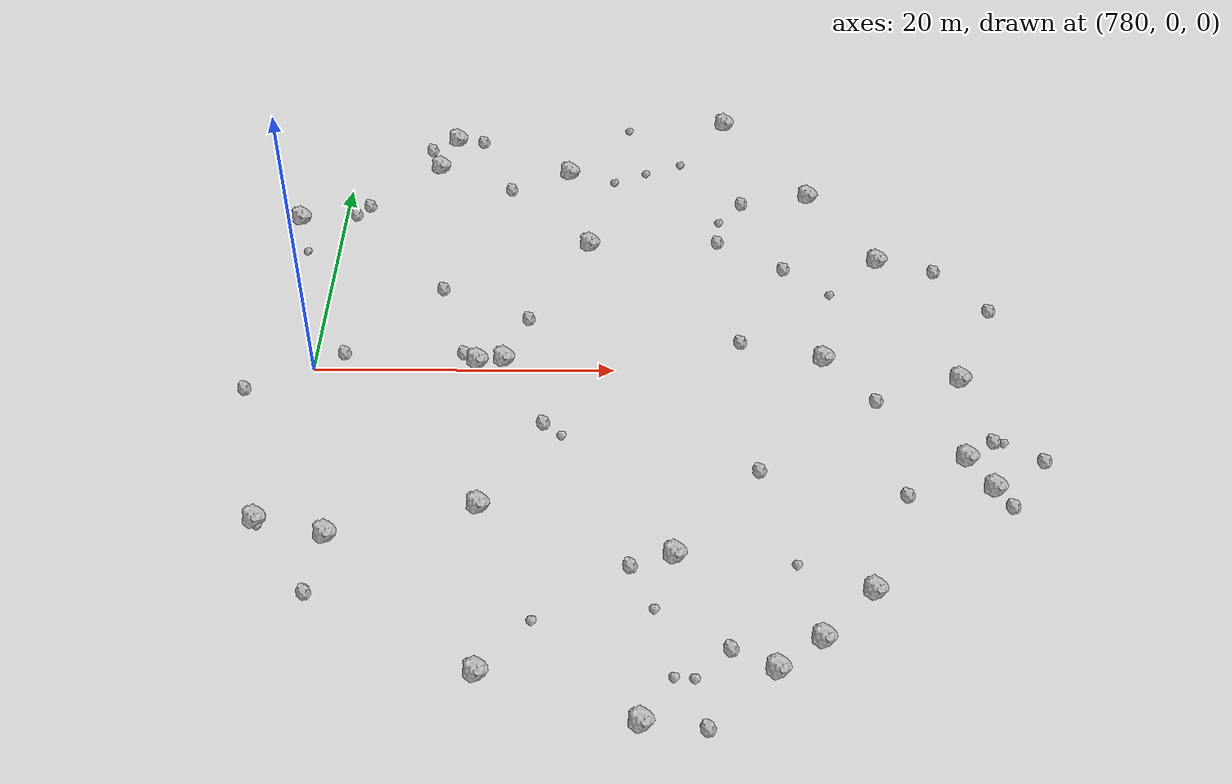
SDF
<sdf version="1.6">
 <world name="default">
  <include><uri>model://sun</uri></include>
  <model name="rock1_20_4">
   <include><uri>model://rock1</uri><pose>815.6040136691564 -19.230279916920196 0.5 0 0 0</pose></include>
  </model>
  <model name="rock1_20_5">
   <include><uri>model://rock1</uri><pose>812.3529745085023 -22.802464607934677 0.5 0 0 0</pose></include>
  </model>
  <model name="rock1_20_6">
   <include><uri>model://rock1</uri><pose>802.0066196087278 -28.6631586844241 0.5 0 0 0</pose></include>
  </model>
  <model name="rock1_20_7">
   <include><uri>model://rock1</uri><pose>787.4280401059539 26.45072558464919 0.5 0 0 0</pose></include>
  </model>
  <model name="rock1_20_8">
   <include><uri>model://rock1</uri><pose>818.6097100206241 11.512359656380085 0.5 0 0 0</pose></include>
  </model>
  <model name="rock1_20_9">
   <include><uri>model://rock1</uri><pose>814.1674402590914 19.217423920436033 0.5 0 0 0</pose></include>
  </model>
  <model name="rock1_20_10">
   <include><uri>model://rock1</uri><pose>776.7054320753242 16.291296348768107 0.5 0 0 0</pose></include>
  </model>
  <model name="rock1_20_11">
   <include><uri>model://rock1</uri><pose>808.22235879361 28.77666702830623 0.5 0 0 0</pose></include>
  </model>
  <model name="rock1_20_12">
   <include><uri>model://rock1</uri><pose>822.4202621500779 -8.327128168077145 0.5 0 0 0</pose></include>
  </model>
  <model name="rock1_20_13">
   <include><uri>model://rock1</uri><pose>778.4343734289444 -13.909705731175166 0.5 0 0 0</pose></include>
  </model>
  <model name="rock1_20_14">
   <include><uri>model://rock1</uri><pose>814.0654002135645 1.0006802106509802 0.5 0 0 0</pose></include>
  </model>
  <model name="rock1_20_15">
   <include><uri>model://rock1</uri><pose>790.8823723746422 0.6179203259011921 0.5 0 0 0</pose></include>
  </model>
  <model name="rock1_20_16">
   <include><uri>model://rock1</uri><pose>791.9174008600104 -12.606437623215111 0.5 0 0 0</pose></include>
  </model>
  <model name="rock1_20_17">
   <include><uri>model://rock1</uri><pose>796.3010460194707 22.116237710701334 0.5 0 0 0</pose></include>
  </model>
  <model name="rock1_20_18">
   <include><uri>model://rock1</uri><pose>822.9415799289964 -0.9981961178938619 0.5 0 0 0</pose></include>
  </model>
  <model name="rock1_20_19">
   <include><uri>model://rock1</uri><pose>823.813972003154 -10.922208489550133 0.5 0 0 0</pose></include>
  </model>
  <model name="rock1_20_20">
   <include><uri>model://rock1</uri><pose>809.647337606273 -25.009365051791132 0.5 0 0 0</pose></include>
  </model>
  <model name="rock1_20_21">
   <include><uri>model://rock1</uri><pose>786.4172271485065 22.79151144887171 0.5 0 0 0</pose></include>
  </model>
  <model name="rock1_20_22">
   <include><uri>model://rock1</uri><pose>782.8792698365198 -15.084312436951429 0.5 0 0 0</pose></include>
  </model>
  <model name="rock1_20_23">
   <include><uri>model://rock1</uri><pose>798.0451215909532 13.331190397513012 0.5 0 0 0</pose></include>
  </model>
  <model name="rock1_20_24">
   <include><uri>model://rock1</uri><pose>803.9366287561381 -16.538255648096257 0.5 0 0 0</pose></include>
  </model>
  <model name="rock1_20_25">
   <include><uri>model://rock1</uri><pose>792.7482528497352 -25.34333760181096 0.5 0 0 0</pose></include>
  </model>
  <model name="rock1_20_26">
   <include><uri>model://rock1</uri><pose>792.6351913910432 0.8329926577673064 0.5 0 0 0</pose></include>
  </model>
  <model name="rock2_20_0">
   <include><uri>model://rock2</uri><pose>818.3222249912822 -11.507587476850752 0.3 0 0 0</pose></include>
  </model>
  <model name="rock2_20_1">
   <include><uri>model://rock2</uri><pose>822.503143731335 10.416505094492237 0.3 0 0 0</pose></include>
  </model>
  <model name="rock2_20_2">
   <include><uri>model://rock2</uri><pose>809.2784470514235 -9.442716644411707 0.3 0 0 0</pose></include>
  </model>
  <model name="rock2_20_3">
   <include><uri>model://rock2</uri><pose>808.5202487396577 2.7179736057493855 0.3 0 0 0</pose></include>
  </model>
  <model name="rock2_20_4">
   <include><uri>model://rock2</uri><pose>789.4173352379779 26.263724364238087 0.3 0 0 0</pose></include>
  </model>
  <model name="rock2_20_5">
   <include><uri>model://rock2</uri><pose>824.6798841596219 -12.383812791258059 0.3 0 0 0</pose></include>
  </model>
  <model name="rock2_20_6">
   <include><uri>model://rock2</uri><pose>789.9011911297708 1.486534446637716 0.3 0 0 0</pose></include>
  </model>
  <model name="rock2_20_7">
   <include><uri>model://rock2</uri><pose>785.5366216377556 25.168491826011234 0.3 0 0 0</pose></include>
  </model>
  <model name="rock2_20_8">
   <include><uri>model://rock2</uri><pose>825.8088377937161 6.147091094900439 0.3 0 0 0</pose></include>
  </model>
  <model name="rock2_20_9">
   <include><uri>model://rock2</uri><pose>807.2549880399498 13.708433309187058 0.3 0 0 0</pose></include>
  </model>
  <model name="rock2_20_10">
   <include><uri>model://rock2</uri><pose>780.7144462249147 16.817104764204565 0.3 0 0 0</pose></include>
  </model>
  <model name="rock2_20_11">
   <include><uri>model://rock2</uri><pose>794.0661895912851 5.086603212491447 0.3 0 0 0</pose></include>
  </model>
  <model name="rock2_20_12">
   <include><uri>model://rock2</uri><pose>775.72819477418 -2.133058199935423 0.3 0 0 0</pose></include>
  </model>
  <model name="rock2_20_13">
   <include><uri>model://rock2</uri><pose>791.9926798640562 20.031807936594348 0.3 0 0 0</pose></include>
  </model>
  <model name="rock2_20_14">
   <include><uri>model://rock2</uri><pose>807.0425567302659 -23.50841373347208 0.3 0 0 0</pose></include>
  </model>
  <model name="rock2_20_15">
   <include><uri>model://rock2</uri><pose>782.2727792730624 -19.559994077513043 0.3 0 0 0</pose></include>
  </model>
  <model name="rock2_20_16">
   <include><uri>model://rock2</uri><pose>787.919389506899 8.240451390070717 0.3 0 0 0</pose></include>
  </model>
  <model name="rock2_20_17">
   <include><uri>model://rock2</uri><pose>817.1751509977049 -3.0285489011655784 0.3 0 0 0</pose></include>
  </model>
  <model name="rock2_20_18">
   <include><uri>model://rock2</uri><pose>824.2774139251707 -6.73402010557912 0.3 0 0 0</pose></include>
  </model>
  <model name="rock2_20_19">
   <include><uri>model://rock2</uri><pose>827.23785056982 -8.467119589389004 0.3 0 0 0</pose></include>
  </model>
  <model name="rock2_20_20">
   <include><uri>model://rock2</uri><pose>801.2559773183335 -17.360037177088127 0.3 0 0 0</pose></include>
  </model>
  <model name="rock2_20_21">
   <include><uri>model://rock2</uri><pose>781.5865578334314 17.936182222161094 0.3 0 0 0</pose></include>
  </model>
  <model name="rock2_20_22">
   <include><uri>model://rock2</uri><pose>811.8524634767207 10.65241231543093 0.3 0 0 0</pose></include>
  </model>
  <model name="rock2_20_23">
   <include><uri>model://rock2</uri><pose>781.8768060730467 1.4233373935553182 0.3 0 0 0</pose></include>
  </model>
  <model name="rock2_20_24">
   <include><uri>model://rock2</uri><pose>795.545203010396 -5.226249019591531 0.3 0 0 0</pose></include>
  </model>
  <model name="rock2_20_25">
   <include><uri>model://rock2</uri><pose>805.6211630061024 -28.977236535909384 0.3 0 0 0</pose></include>
  </model>
  <model name="rock2_20_26">
   <include><uri>model://rock2</uri><pose>809.1492945096137 18.402528482567092 0.3 0 0 0</pose></include>
  </model>
  <model name="rock3_20_0">
   <include><uri>model://rock3</uri><pose>796.7570047825423 -6.3703931476178575 0.2 0 0 0</pose></include>
  </model>
  <model name="rock3_20_1">
   <include><uri>model://rock3</uri><pose>778.6087910263568 -14.28560385922249 0.2 0 0 0</pose></include>
  </model>
  <model name="rock3_20_2">
   <include><uri>model://rock3</uri><pose>807.4229239549599 16.10086390660397 0.2 0 0 0</pose></include>
  </model>
  <model name="rock3_20_3">
   <include><uri>model://rock3</uri><pose>802.0488625128723 22.212269438285908 0.2 0 0 0</pose></include>
  </model>
  <model name="rock3_20_4">
   <include><uri>model://rock3</uri><pose>799.6795624331552 21.06782558613014 0.2 0 0 0</pose></include>
  </model>
  <model name="rock3_20_5">
   <include><uri>model://rock3</uri><pose>795.6239866975005 -21.55870549629917 0.2 0 0 0</pose></include>
  </model>
  <model name="rock3_20_6">
   <include><uri>model://rock3</uri><pose>800.7431951831946 27.944220646638662 0.2 0 0 0</pose></include>
  </model>
  <model name="rock3_20_7">
   <include><uri>model://rock3</uri><pose>811.1707470192655 -17.20254344868153 0.2 0 0 0</pose></include>
  </model>
  <model name="rock3_20_8">
   <include><uri>model://rock3</uri><pose>814.9503391837535 7.8318561843100625 0.2 0 0 0</pose></include>
  </model>
  <model name="rock3_20_9">
   <include><uri>model://rock3</uri><pose>803.8032065032756 -25.545681279601936 0.2 0 0 0</pose></include>
  </model>
  <model name="rock3_20_10">
   <include><uri>model://rock3</uri><pose>824.90119786898 -6.849659149459168 0.2 0 0 0</pose></include>
  </model>
  <model name="rock3_20_11">
   <include><uri>model://rock3</uri><pose>804.9647722130248 -25.632278884378614 0.2 0 0 0</pose></include>
  </model>
  <model name="rock3_20_12">
   <include><uri>model://rock3</uri><pose>804.6779411814821 23.369047551811825 0.2 0 0 0</pose></include>
  </model>
  <model name="rock3_20_13">
   <include><uri>model://rock3</uri><pose>802.6984476813872 -20.644734397857917 0.2 0 0 0</pose></include>
  </model>
  <model name="rock3_20_14">
   <include><uri>model://rock3</uri><pose>777.693434737994 12.50014297909307 0.2 0 0 0</pose></include>
  </model>
 </world>
</sdf>
